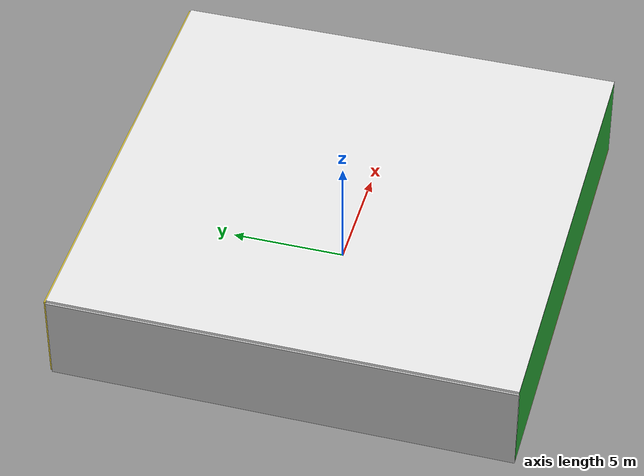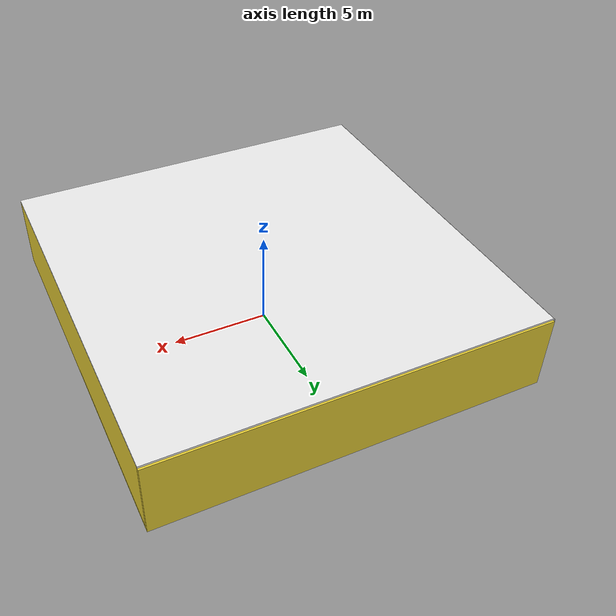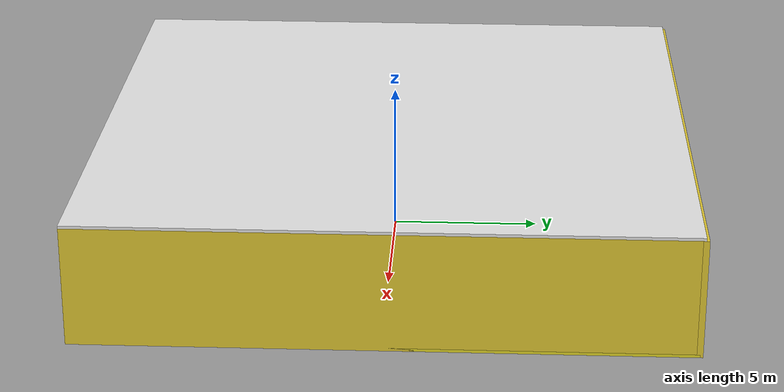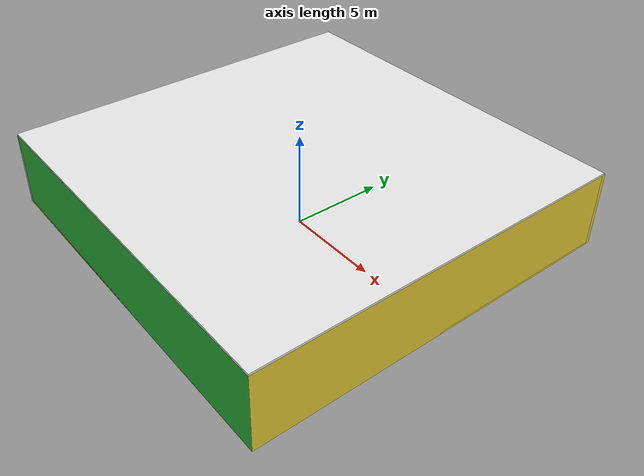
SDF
<sdf version="1.4">
 <world name="default">
  <physics type="ode">
   <max_step_size>0.001</max_step_size>
   <real_time_factor>1</real_time_factor>
   <real_time_update_rate>1000</real_time_update_rate>
   <gravity>0 0 -9.8</gravity>
  </physics>
  <scene><ambient>0.4 0.4 0.4 1</ambient><background>0.7 0.7 0.7 1</background><shadows>1</shadows></scene>
  <model name="Surrounding">
   <static>1</static>
   <link name="Ceiling">
    <collision name="Ceiling_Collision"><geometry><box><size>20 20 0.1</size></box></geometry></collision>
    <visual name="Ceiling_Visual">
     <geometry><box><size>20 20 0.1</size></box></geometry>
     <material>
      <script><uri>file://media/materials/scripts/gazebo.material</uri><name>Gazebo/White</name></script>
     </material>
    </visual>
    <pose>0 0 4.05 0 0 0</pose>
   </link>
   <link name="Wall_South">
    <collision name="Wall_South_Collision">
     <geometry><box><size>20 0 4</size></box></geometry>
     <pose>0 0 2 0 -0 0</pose>
    </collision>
    <visual name="Wall_South_Visual">
     <pose>0 0 2 0 -0 0</pose>
     <geometry><box><size>20 0 4</size></box></geometry>
     <material>
      <script><uri>file://media/materials/scripts/gazebo.material</uri><name>Gazebo/GreenGlow</name></script>
     </material>
    </visual>
    <velocity_decay><linear>0</linear><angular>0</angular></velocity_decay>
    <pose>0 -10 0 0 -0 0</pose>
   </link>
   <link name="Wall_East">
    <collision name="Wall_21_Collision">
     <geometry><box><size>20 0 4</size></box></geometry>
     <pose>0 0 2 0 -0 0</pose>
    </collision>
    <visual name="Wall_21_Visual">
     <pose>0 0 2 0 -0 0</pose>
     <geometry><box><size>20 0 4</size></box></geometry>
     <material>
      <script><uri>file://media/materials/scripts/gazebo.material</uri><name>Gazebo/ZincYellow</name></script>
     </material>
    </visual>
    <velocity_decay><linear>0</linear><angular>0</angular></velocity_decay>
    <pose>10 0 0 0 -0 1.5708</pose>
   </link>
   <link name="Wall_North">
    <collision name="Wall_22_Collision">
     <geometry><box><size>20 0.2 4</size></box></geometry>
     <pose>0 0 2 0 -0 0</pose>
    </collision>
    <visual name="Wall_22_Visual">
     <pose>0 0 2 0 -0 0</pose>
     <geometry><box><size>20 0.2 4</size></box></geometry>
     <material>
      <script><uri>file://media/materials/scripts/gazebo.material</uri><name>Gazebo/ZincYellow</name></script>
     </material>
    </visual>
    <velocity_decay><linear>0</linear><angular>0</angular></velocity_decay>
    <pose>0 10 0 0 -0 0</pose>
   </link>
   <link name="Wall_West">
    <collision name="Wall_23_Collision">
     <geometry><box><size>20 0.2 4</size></box></geometry>
     <pose>0 0 2 0 -0 0</pose>
    </collision>
    <visual name="Wall_23_Visual">
     <pose>0 0 2 0 -0 0</pose>
     <geometry><box><size>20 0.2 4</size></box></geometry>
     <material>
      <script><uri>file://media/materials/scripts/gazebo.material</uri><name>Gazebo/Pioneer2Body</name></script>
     </material>
    </visual>
    <velocity_decay><linear>0</linear><angular>0</angular></velocity_decay>
    <pose>-10 0 0 0 0 -1.5708</pose>
   </link>
   <link name="Ground_link">
    <collision name="collision">
     <pose>0 0 .05 0 -0 0</pose>
     <geometry><box><size>20 20 0.1</size></box></geometry>
    </collision>
    <visual name="visual">
     <pose>0 0 .05 0 -0 0</pose>
     <geometry><box><size>20 20 0.1</size></box></geometry>
     <material>
      <script><uri>file://media/materials/scripts/gazebo.material</uri><name>Gazebo/Yellow</name></script>
     </material>
    </visual>
   </link>
   <static>1</static>
  </model>
  <spherical_coordinates>
   <surface_model>EARTH_WGS84</surface_model>
   <latitude_deg>0</latitude_deg>
   <longitude_deg>0</longitude_deg>
   <elevation>0</elevation>
   <heading_deg>0</heading_deg>
  </spherical_coordinates>
  <light name="lightball_0" type="diffuse">
   <diffuse>0.8 0.8 0.8 1</diffuse>
   <specular>0.2 0.2 0.2 1</specular>
   <attenuation>
    <range>100</range>
    <constant>0.7</constant>
    <linear>0.01</linear>
    <quadratic>0.001</quadratic>
   </attenuation>
   <direction>-0.5 0.1 -0.9</direction>
   <pose>-7.73836173362 8.42191269963 1.44177164803 0 0 0</pose>
  </light>
  <light name="lightball_1" type="diffuse">
   <diffuse>0.8 0.8 0.8 1</diffuse>
   <specular>0.2 0.2 0.2 1</specular>
   <attenuation>
    <range>100</range>
    <constant>0.7</constant>
    <linear>0.01</linear>
    <quadratic>0.001</quadratic>
   </attenuation>
   <direction>-0.5 0.1 -0.9</direction>
   <pose>-6.93113137545 0.271816233272 1.63575720749 0 0 0</pose>
  </light>
  <light name="lightball_2" type="diffuse">
   <diffuse>0.8 0.8 0.8 1</diffuse>
   <specular>0.2 0.2 0.2 1</specular>
   <attenuation>
    <range>100</range>
    <constant>0.7</constant>
    <linear>0.01</linear>
    <quadratic>0.001</quadratic>
   </attenuation>
   <direction>-0.5 0.1 -0.9</direction>
   <pose>-1.57396681029 -8.66576432565 0.502739830616 0 0 0</pose>
  </light>
  <light name="lightball_3" type="diffuse">
   <diffuse>0.8 0.8 0.8 1</diffuse>
   <specular>0.2 0.2 0.2 1</specular>
   <attenuation>
    <range>100</range>
    <constant>0.7</constant>
    <linear>0.01</linear>
    <quadratic>0.001</quadratic>
   </attenuation>
   <direction>-0.5 0.1 -0.9</direction>
   <pose>9.98250385132 -0.637802274345 3.10265020089 0 0 0</pose>
  </light>
  <light name="lightball_4" type="diffuse">
   <diffuse>0.8 0.8 0.8 1</diffuse>
   <specular>0.2 0.2 0.2 1</specular>
   <attenuation>
    <range>100</range>
    <constant>0.7</constant>
    <linear>0.01</linear>
    <quadratic>0.001</quadratic>
   </attenuation>
   <direction>-0.5 0.1 -0.9</direction>
   <pose>3.89395743725 1.23737687995 0.527841002186 0 0 0</pose>
  </light>
  <light name="lightball_5" type="diffuse">
   <diffuse>0.8 0.8 0.8 1</diffuse>
   <specular>0.2 0.2 0.2 1</specular>
   <attenuation>
    <range>100</range>
    <constant>0.7</constant>
    <linear>0.01</linear>
    <quadratic>0.001</quadratic>
   </attenuation>
   <direction>-0.5 0.1 -0.9</direction>
   <pose>-3.57051311516 -0.749644853596 1.94755350902 0 0 0</pose>
  </light>
  <include><uri>model://table</uri><pose>-4.00097972873 -4.48665386626 0 0 0 2.19335988057</pose></include>
  <include>
   <uri>model://construction_cone</uri>
   <pose>-4.6544273198 1.30717612013 0 0 0 2.87598096558</pose>
  </include>
  <include>
   <uri>model://construction_cone</uri>
   <pose>-4.22169742421 3.80786870295 0 0 0 0.180336483719</pose>
  </include>
  <include><uri>model://cabinet</uri><pose>1.61596110199 8.15966066504 0 0 0 1.58744212666</pose></include>
  <include>
   <uri>model://textured_shapes</uri>
   <pose>4.40114869496 -7.55733226888 0 0 0 1.67028729871</pose>
  </include>
  <include>
   <uri>model://robocup_3Dsim_goal</uri>
   <pose>4.66314262283 -1.07140588382 0 0 0 1.21385481984</pose>
  </include>
 </world>
</sdf>

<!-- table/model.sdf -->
<sdf version="1.5">
  <model name="table">
    <static>true</static>
    <link name="link">
      <collision name="surface">
        <pose>0 0 1.0 0 0 0</pose>
        <geometry>
          <box>
            <size>1.5 0.8 0.03</size>
          </box>
        </geometry>
        <surface>
          <friction>
            <ode>
              <mu>0.6</mu>
              <mu2>0.6</mu2>
            </ode>
          </friction>
        </surface>
      </collision>
      <visual name="visual1">
        <pose>0 0 1.0 0 0 0</pose>
        <geometry>
          <box>
            <size>1.5 0.8 0.03</size>
          </box>
        </geometry>
        <material>
          <script>
            <uri>model://media/materials/scripts/gazebo.material</uri>
            <name>Gazebo/Wood</name>
          </script>
        </material>
      </visual>
      <collision name="front_left_leg">
        <pose>0.68 0.38 0.5 0 0 0</pose>
        <geometry>
          <cylinder>
            <radius>0.02</radius>
            <length>1.0</length>
          </cylinder>
        </geometry>
      </collision>
      <visual name="front_left_leg">
        <pose>0.68 0.38 0.5 0 0 0</pose>
        <geometry>
          <cylinder>
            <radius>0.02</radius>
            <length>1.0</length>
          </cylinder>
        </geometry>
        <material>
          <script>
            <uri>model://media/materials/scripts/gazebo.material</uri>
            <name>Gazebo/Grey</name>
          </script>
        </material>
      </visual>
      <collision name="front_right_leg">
        <pose>0.68 -0.38 0.5 0 0 0</pose>
        <geometry>
          <cylinder>
            <radius>0.02</radius>
            <length>1.0</length>
          </cylinder>
        </geometry>
      </collision>
      <visual name="front_right_leg">
        <pose>0.68 -0.38 0.5 0 0 0</pose>
        <geometry>
          <cylinder>
            <radius>0.02</radius>
            <length>1.0</length>
          </cylinder>
        </geometry>
        <material>
          <script>
            <uri>model://media/materials/scripts/gazebo.material</uri>
            <name>Gazebo/Grey</name>
          </script>
        </material>
      </visual>
      <collision name="back_right_leg">
        <pose>-0.68 -0.38 0.5 0 0 0</pose>
        <geometry>
          <cylinder>
            <radius>0.02</radius>
            <length>1.0</length>
          </cylinder>
        </geometry>
      </collision>
      <visual name="back_right_leg">
        <pose>-0.68 -0.38 0.5 0 0 0</pose>
        <geometry>
          <cylinder>
            <radius>0.02</radius>
            <length>1.0</length>
          </cylinder>
        </geometry>
        <material>
          <script>
            <uri>model://media/materials/scripts/gazebo.material</uri>
            <name>Gazebo/Grey</name>
          </script>
        </material>
      </visual>
      <collision name="back_left_leg">
        <pose>-0.68 0.38 0.5 0 0 0</pose>
        <geometry>
          <cylinder>
            <radius>0.02</radius>
            <length>1.0</length>
          </cylinder>
        </geometry>
      </collision>
      <visual name="back_left_leg">
        <pose>-0.68 0.38 0.5 0 0 0</pose>
        <geometry>
          <cylinder>
            <radius>0.02</radius>
            <length>1.0</length>
          </cylinder>
        </geometry>
        <material>
          <script>
            <uri>model://media/materials/scripts/gazebo.material</uri>
            <name>Gazebo/Grey</name>
          </script>
        </material>
      </visual>
    </link>
  </model>
</sdf>

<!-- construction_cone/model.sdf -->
<sdf version="1.5">
  <model name="Construction Cone">
    <link name="link">
      <collision name="collision">
        <geometry>
          <mesh>
            <scale>10 10 10</scale>
            <uri>file://isr-testbed/construction_cone/meshes/construction_cone.dae</uri>
          </mesh>
        </geometry>
      </collision>
      <visual name="visual">
        <geometry>
          <mesh>
            <scale>10 10 10</scale>
            <uri>file://isr-testbed/construction_cone/meshes/construction_cone.dae</uri>
          </mesh>
        </geometry>
      </visual>
    </link>
  </model>
</sdf>

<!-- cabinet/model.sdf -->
<sdf version="1.5">
  <model name="cabinet">
    <static>true</static>
    <link name="cabinet_bottom_plate">
      <inertial>
        <pose>0 0 -1 0 0 0</pose>
        <inertia>
          <ixx>2.050000</ixx>
          <ixy>0</ixy>
          <ixz>0</ixz>
          <iyy>2.050000</iyy>
          <iyz>0</iyz>
          <izz>2.050000</izz>
        </inertia>
        <mass>25.000000</mass>
      </inertial>
      <collision name="cabinet_bottom_plate_geom">
        <pose>0 0 0.010000 0 0 0</pose>
        <geometry>
          <box>
            <size>0.450000 0.450000 0.020000</size>
          </box>
        </geometry>
      </collision>
      <visual name="cabinet_bottom_plate_geom_visual">
        <pose>0 0 0.010000 0 0 0</pose>
        <geometry>
          <box>
            <size>0.450000 0.450000 0.020000</size>
          </box>
        </geometry>
        <material>
          <script>
            <uri>model://media/materials/scripts/gazebo.material</uri>
            <name>Gazebo/Wood</name>
          </script>
        </material>
      </visual>
      <collision name="cabinet_bottom_plate_geom_cabinet_back_plate">
        <pose>0.235000 0 0.510000 0 0 0</pose>
        <geometry>
          <box>
            <size>0.020000 0.450000 1.020000</size>
          </box>
        </geometry>
      </collision>
      <visual name="cabinet_bottom_plate_geom_cabinet_back_plate_visual">
        <pose>0.235000 0 0.510000 0 0 0</pose>
        <geometry>
          <box>
            <size>0.020000 0.450000 1.020000</size>
          </box>
        </geometry>
        <material>
          <script>
            <uri>model://media/materials/scripts/gazebo.material</uri>
            <name>Gazebo/Wood</name>
          </script>
        </material>
      </visual>
      <collision name="cabinet_bottom_plate_geom_cabinet_left_plate">
        <pose>0 0.235000 0.510000 0 0 0</pose>
        <geometry>
          <box>
            <size>0.450000 0.020000 1.020000</size>
          </box>
        </geometry>
      </collision>
      <visual name="cabinet_bottom_plate_geom_cabinet_left_plate_visual">
        <pose>0 0.235000 0.510000 0 0 0</pose>
        <geometry>
          <box>
            <size>0.450000 0.020000 1.020000</size>
          </box>
        </geometry>
        <material>
          <script>
            <uri>model://media/materials/scripts/gazebo.material</uri>
            <name>Gazebo/Wood</name>
          </script>
        </material>
      </visual>
      <collision name="cabinet_bottom_plate_geom_cabinet_middle_plate">
        <pose>0 0 0.510000 0 0 0</pose>
        <geometry>
          <box>
            <size>0.450000 0.450000 0.020000</size>
          </box>
        </geometry>
      </collision>
      <visual name="cabinet_bottom_plate_geom_cabinet_middle_plate_visual">
        <pose>0 0 0.510000 0 0 0</pose>
        <geometry>
          <box>
            <size>0.450000 0.450000 0.020000</size>
          </box>
        </geometry>
        <material>
          <script>
            <uri>model://media/materials/scripts/gazebo.material</uri>
            <name>Gazebo/Wood</name>
          </script>
        </material>
      </visual>
      <collision name="cabinet_bottom_plate_geom_cabinet_right_plate">
        <pose>0 -0.235000 0.510000 0 0 0</pose>
        <geometry>
          <box>
            <size>0.450000 0.020000 1.020000</size>
          </box>
        </geometry>
      </collision>
      <visual name="cabinet_bottom_plate_geom_cabinet_right_plate_visual">
        <pose>0 -0.235000 0.510000 0 0 0</pose>
        <geometry>
          <box>
            <size>0.450000 0.020000 1.020000</size>
          </box>
        </geometry>
        <material>
          <script>
            <uri>model://media/materials/scripts/gazebo.material</uri>
            <name>Gazebo/Wood</name>
          </script>
        </material>
      </visual>
      <collision name="cabinet_bottom_plate_geom_cabinet_top_plate">
        <pose>0 0 1.010000 0 0 0</pose>
        <geometry>
          <box>
            <size>0.450000 0.450000 0.020000</size>
          </box>
        </geometry>
      </collision>
      <visual name="cabinet_bottom_plate_geom_cabinet_top_plate_visual">
        <pose>0 0 1.010000 0 0 0</pose>
        <geometry>
          <box>
            <size>0.450000 0.450000 0.020000</size>
          </box>
        </geometry>
        <material>
          <script>
            <uri>model://media/materials/scripts/gazebo.material</uri>
            <name>Gazebo/Wood</name>
          </script>
        </material>
      </visual>
    </link>
  </model>
</sdf>

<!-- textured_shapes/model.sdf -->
<sdf version="1.6">
  <model name="textured_shapes">
    <pose>0 0 0.5 0 0 0</pose>
    <link name="box">
      <pose>0 -1.5 0 0 0 0</pose>
      <collision name="collision">
        <geometry>
          <box>
            <size>1 1 1</size>
          </box>
        </geometry>
      </collision>
      <visual name="visual">
        <geometry>
          <box>
            <size>1 1 1</size>
          </box>
        </geometry>
        <material>
          <script>
            <uri>model://../model_source/models/textured_shapes/materials/scripts</uri>
            <uri>model://../model_source/models/textured_shapes/materials/textures</uri>
            <name>TexturedShape/Squares</name>
          </script>
        </material>
      </visual>
    </link>
    <link name="sphere">
      <collision name="collision">
        <geometry>
          <sphere>
            <radius>0.5</radius>
          </sphere>
        </geometry>
      </collision>
      <visual name="visual">
        <geometry>
          <sphere>
            <radius>0.5</radius>
          </sphere>
        </geometry>
        <material>
          <script>
            <uri>model://../model_source/models/textured_shapes/materials/scripts</uri>
            <uri>model://../model_source/models/textured_shapes/materials/textures</uri>
            <name>TexturedShape/Squares</name>
          </script>
        </material>
      </visual>
    </link>
    <link name="cylinder">
      <pose>0 1.5 0 0 0 0</pose>
      <collision name="collision">
        <geometry>
          <cylinder>
            <radius>0.5</radius>
            <length>1</length>
          </cylinder>
        </geometry>
      </collision>
      <visual name="visual">
        <geometry>
          <cylinder>
            <radius>0.5</radius>
            <length>1</length>
          </cylinder>
        </geometry>
        <material>
          <script>
            <uri>model://../model_source/models/textured_shapes/materials/scripts</uri>
            <uri>model://../model_source/models/textured_shapes/materials/textures</uri>
            <name>TexturedShape/Squares</name>
          </script>
        </material>
      </visual>
    </link>
  </model>
</sdf>

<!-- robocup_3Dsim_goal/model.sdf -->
<sdf version="1.5">
  <model name="robocup_3d_goal">
    <static>true</static>
    <link name="left_post">
      <pose>0 1.05 0.45 0 0 0</pose>
      <collision name="collision">
        <geometry>
          <cylinder>
            <radius>0.05</radius>
            <length>0.9</length>
          </cylinder>
        </geometry>
      </collision>
      <visual name="visual">
        <geometry>
          <cylinder>
            <radius>0.05</radius>
            <length>0.9</length>
          </cylinder>
        </geometry>
        <material>
          <script>
            <uri>file://media/materials/scripts/gazebo.material</uri>
            <name>Gazebo/ZincYellow</name>
          </script>
        </material>
      </visual>
    </link>
    <link name="left_support_horiz_lower">
      <pose>0.30 1.05 0.01 0 0 0</pose>
      <collision name="collision">
        <geometry>
          <box>
            <size>0.50 0.02 0.02</size>
          </box>
        </geometry>
      </collision>
      <visual name="visual">
        <geometry>
          <box>
            <size>0.50 0.02 0.02</size>
          </box>
        </geometry>
        <material>
          <script>
            <uri>file://media/materials/scripts/gazebo.material</uri>
            <name>Gazebo/White</name>
          </script>
        </material>
      </visual>
    </link>
    <link name="left_support_horiz_upper">
      <pose>0.30 1.05 0.79 0 0 0</pose>
      <collision name="collision">
        <geometry>
          <box>
            <size>0.50 0.02 0.02</size>
          </box>
        </geometry>
      </collision>
      <visual name="visual">
        <geometry>
          <box>
            <size>0.50 0.02 0.02</size>
          </box>
        </geometry>
        <material>
          <script>
            <uri>file://media/materials/scripts/gazebo.material</uri>
            <name>Gazebo/White</name>
          </script>
        </material>
      </visual>
    </link>
    <link name="left_support_vertical">
      <pose>0.56 1.05 0.4 0 1.5708 0</pose>
      <collision name="collision">
        <geometry>
          <box>
            <size>0.80 0.02 0.02</size>
          </box>
        </geometry>
      </collision>
      <visual name="visual">
        <geometry>
          <box>
            <size>0.80 0.02 0.02</size>
          </box>
        </geometry>
        <material>
          <script>
            <uri>file://media/materials/scripts/gazebo.material</uri>
            <name>Gazebo/White</name>
          </script>
        </material>
      </visual>
    </link>
    <link name="right_support_horiz_lower">
      <pose>0.30 -1.05 0.01 0 0 0</pose>
      <collision name="collision">
        <geometry>
          <box>
            <size>0.50 0.02 0.02</size>
          </box>
        </geometry>
      </collision>
      <visual name="visual">
        <geometry>
          <box>
            <size>0.50 0.02 0.02</size>
          </box>
        </geometry>
        <material>
          <script>
            <uri>file://media/materials/scripts/gazebo.material</uri>
            <name>Gazebo/White</name>
          </script>
        </material>
      </visual>
    </link>
    <link name="right_support_horiz_upper">
      <pose>0.30 -1.05 0.79 0 0 0</pose>
      <collision name="collision">
        <geometry>
          <box>
            <size>0.50 0.02 0.02</size>
          </box>
        </geometry>
      </collision>
      <visual name="visual">
        <geometry>
          <box>
            <size>0.50 0.02 0.02</size>
          </box>
        </geometry>
        <material>
          <script>
            <uri>file://media/materials/scripts/gazebo.material</uri>
            <name>Gazebo/White</name>
          </script>
        </material>
      </visual>
    </link>
    <link name="right_support_vertical">
      <pose>0.56 -1.05 0.4 0 1.5708 0</pose>
      <collision name="collision">
        <geometry>
          <box>
            <size>0.80 0.02 0.02</size>
          </box>
        </geometry>
      </collision>
      <visual name="visual">
        <geometry>
          <box>
            <size>0.80 0.02 0.02</size>
          </box>
        </geometry>
        <material>
          <script>
            <uri>file://media/materials/scripts/gazebo.material</uri>
            <name>Gazebo/White</name>
          </script>
        </material>
      </visual>
    </link>
    <link name="center_support_horiz_lower">
      <pose>0.56 0 0.01 0 1.5708 0</pose>
      <collision name="collision">
        <geometry>
          <box>
            <size>0.02 2.08 0.02</size>
          </box>
        </geometry>
      </collision>
      <visual name="visual">
        <geometry>
          <box>
            <size>0.02 2.08 0.02</size>
          </box>
        </geometry>
        <material>
          <script>
            <uri>file://media/materials/scripts/gazebo.material</uri>
            <name>Gazebo/White</name>
          </script>
        </material>
      </visual>
    </link>
    <link name="center_support_horiz_upper">
      <pose>0.56 0 0.79 0 1.5708 0</pose>
      <collision name="collision">
        <geometry>
          <box>
            <size>0.02 2.08 0.02</size>
          </box>
        </geometry>
      </collision>
      <visual name="visual">
        <geometry>
          <box>
            <size>0.02 2.08 0.02</size>
          </box>
        </geometry>
        <material>
          <script>
            <uri>file://media/materials/scripts/gazebo.material</uri>
            <name>Gazebo/White</name>
          </script>
        </material>
      </visual>
    </link>
    <link name="right_post">
      <pose>0 -1.05 0.45 0 0 0</pose>
      <collision name="collision">
        <geometry>
          <cylinder>
            <radius>0.05</radius>
            <length>0.9</length>
          </cylinder>
        </geometry>
      </collision>
      <visual name="visual">
        <geometry>
          <cylinder>
            <radius>0.05</radius>
            <length>0.9</length>
          </cylinder>
        </geometry>
        <material>
          <script>
            <uri>file://media/materials/scripts/gazebo.material</uri>
            <name>Gazebo/ZincYellow</name>
          </script>
        </material>
      </visual>
    </link>
    <link name="crossbar">
      <pose>0 0 0.85 1.57 1.57 0</pose>
      <collision name="collision">
        <geometry>
          <cylinder>
            <radius>0.05</radius>
            <length>2.0</length>
          </cylinder>
        </geometry>
      </collision>
      <visual name="visual">
        <geometry>
          <cylinder>
            <radius>0.05</radius>
            <length>2.0</length>
          </cylinder>
        </geometry>
        <material>
          <script>
            <uri>file://media/materials/scripts/gazebo.material</uri>
            <name>Gazebo/ZincYellow</name>
          </script>
        </material>
      </visual>
    </link>
    <link name="center_net">
      <pose>0.56 0 0.40 0 0 0</pose>
      <collision name="collision">
        <geometry>
          <box>
            <size>0.01 2.1 0.80</size>
          </box>
        </geometry>
      </collision>
      <visual name="visual">
        <geometry>
          <box>
            <size>0.01 2.1 0.80</size>
          </box>
        </geometry>
        <material>
          <script>
            <uri>model://../model_source/models/robocup09_spl_field/materials/scripts/</uri>
            <uri>model://../model_source/models/robocup09_spl_field/materials/textures/</uri>
            <name>RoboCup/Net</name>
          </script>
        </material>
      </visual>
    </link>
    <link name="left_net">
      <pose>0.30 1.05 0.40 0 0 0</pose>
      <collision name="collision">
        <geometry>
          <box>
            <size>0.50 0.01 0.76</size>
          </box>
        </geometry>
      </collision>
      <visual name="visual">
        <geometry>
          <box>
            <size>0.50 0.01 0.76</size>
          </box>
        </geometry>
        <material>
          <script>
            <uri>model://../model_source/models/robocup09_spl_field/materials/scripts/</uri>
            <uri>model://../model_source/models/robocup09_spl_field/materials/textures/</uri>
            <name>RoboCup/Net</name>
          </script>
        </material>
      </visual>
    </link>
    <link name="right_net">
      <pose>0.30 -1.05 0.40 0 0 0</pose>
      <collision name="collision">
        <geometry>
          <box>
            <size>0.50 0.01 0.76</size>
          </box>
        </geometry>
      </collision>
      <visual name="visual">
        <geometry>
          <box>
            <size>0.50 0.01 0.76</size>
          </box>
        </geometry>
        <material>
          <script>
            <uri>model://../model_source/models/robocup09_spl_field/materials/scripts/</uri>
            <uri>model://../model_source/models/robocup09_spl_field/materials/textures/</uri>
            <name>RoboCup/Net</name>
          </script>
        </material>
      </visual>
    </link>
  </model>
</sdf>
